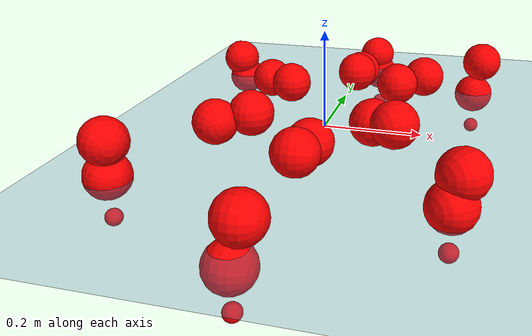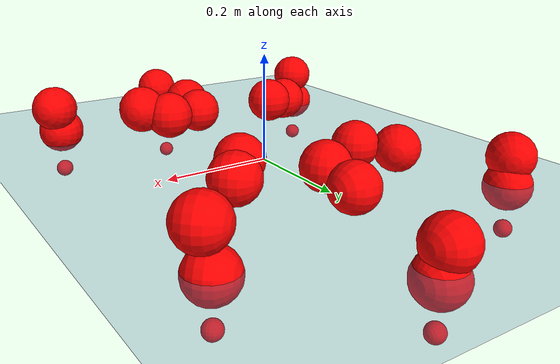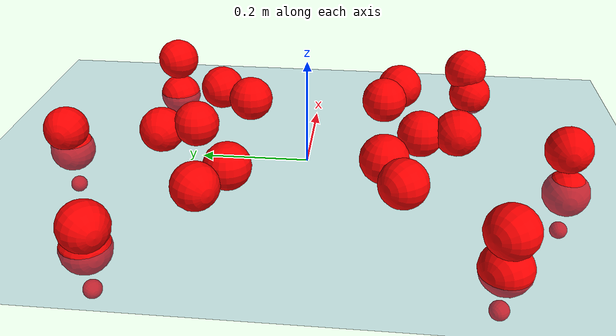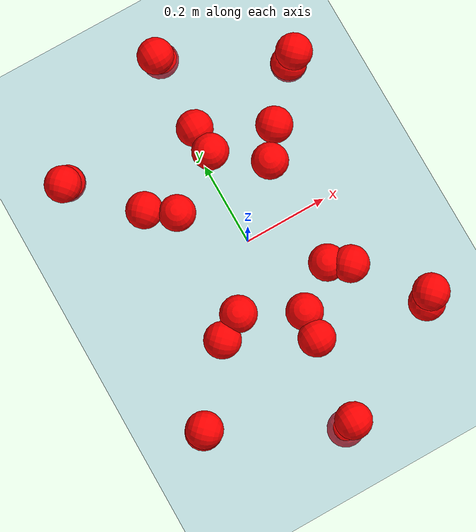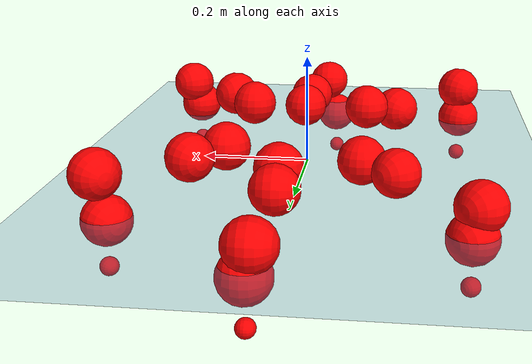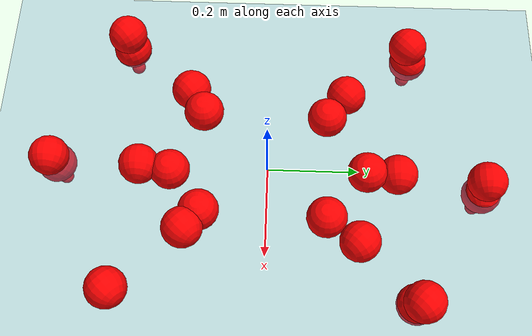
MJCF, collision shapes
<mujoco model="Golem">
  <compiler angle="radian" assetdir="assets" balanceinertia="true" inertiafromgeom="false"/>

  <option timestep="0.005" density="1.2" viscosity="2e-05"/>

  <size nkey="1"/>

  <visual>
    <quality shadowsize="8192"/>
    <map shadowclip="0.5"/>
  </visual>

  <default>
    <default class="/">
      <joint armature="0.01" damping="0.01" frictionloss="0.01"/>
      <geom contype="0" conaffinity="0" group="1" solref="-1000 -80"/>
      <site size="0.01 0.005 0.005" group="5"/>
      <general forcelimited="true" biastype="affine" gainprm="25" biasprm="0 -25 -0.5"/>
      <default class="visual">
        <geom type="mesh" group="2"/>
      </default>
      <default class="collision">
        <geom group="3"/>
      </default>
      <default class="foot">
        <geom size="0.01 0 0" condim="6" group="4" priority="1" solimp="0.015 1 0.01"/>
      </default>
      <default class="reward_collision_sphere">
        <geom group="5" rgba="1 0 0 1"/>
      </default>
    </default>
  </default>

  <asset>
    <texture type="skybox" colorspace="auto" name="//unnamed_texture_0" builtin="gradient" rgb1="0.95 0.95 0.95" rgb2="0.95 0.95 0.95" width="100" height="600"/>
    <texture type="2d" colorspace="auto" name="texplane" builtin="checker" rgb1="0.345 0.575 0.748" rgb2="0.345 0.575 0.748" markrgb="1 1 1" width="512" height="512"/>
    <material name="MatPlane" class="/" texture="texplane" texuniform="true" texrepeat="2 2" specular="0.9"/>
    <mesh name="body" class="/" file="body.stl" scale="0.001 0.001 0.001"/>
    <mesh name="coxa" class="/" file="coxa.stl" scale="0.001 0.001 0.001"/>
    <mesh name="femur" class="/" file="femur.stl" scale="0.001 0.001 0.001"/>
    <mesh name="tibia" class="/" file="tibia.stl" scale="0.001 0.001 0.001"/>
    <mesh name="tarsus" class="/" file="tarsus.stl" scale="0.001 0.001 0.001"/>
  </asset>

  <worldbody>
    <geom name="floor" class="/" size="100 100 0.125" type="plane" group="0" material="MatPlane"/>
    <light name="toplight_shadow" class="/" pos="0 0 5" dir="0.0990148 0.0990148 -0.990148" type="directional" ambient="0.04 0.04 0.04" diffuse="0.55 0.55 0.55" specular="0.12 0.12 0.12"/>
    <light name="toplight_fill" class="/" pos="0 0 5" dir="0.0990148 0.0990148 -0.990148" type="directional" castshadow="false" ambient="0.04 0.04 0.04" diffuse="0.3 0.3 0.3" specular="0.08 0.08 0.08"/>
    <body name="trunk" pos="0.0128814 -0.00105033 0.010946" quat="0.999995 0.000540223 -0.00103509 -0.00282521">
      <inertial pos="0.00614204 0.00796359 0.0163906" quat="0.996528 -0.00166174 -0.0383713 0.0738718" mass="5.58238" diaginertia="0.0031922 0.159303 0.00282623"/>
      <joint name="//unnamed_joint_0" type="free"/>
      <geom name="//unnamed_geom_1" class="/" pos="0 0 0.047996" quat="1 0 0 0" type="mesh" rgba="0.9 0.9 0.9 1" mesh="body"/>
      <site name="imu" class="/" pos="0.0475424 0.04328 0.127601" size="0.0108425"/>
      <camera name="track" class="/" pos="0 -3.47929 0" quat="0.707107 0.707107 0 0" mode="trackcom"/>
      <camera name="ego_camera" class="/" pos="0.0992102 0 0.0749937" quat="-0.5 -0.5 0.5 0.5"/>
      <body name="coxa_RR" pos="-0.133174 -0.15827 0.0607611" quat="0.381555 0.000747075 7.23628e-05 -0.924346">
        <inertial pos="0.00871583 -0.00193122 0.0100615" quat="0.998097 0.0606281 0.00176762 0.011079" mass="0.295489" diaginertia="0.00245098 0.194844 0.00275891"/>
        <joint name="coxa_joint_RR" class="/" pos="0 0 0" axis="0.050802 0.0267264 -0.998351" stiffness="0.0080471" range="-2.93925 2.80711" armature="0.0168602" damping="0.0320819" frictionloss="0.0170924"/>
        <geom name="//unnamed_geom_2" class="/" type="mesh" rgba="0.2 0.2 0.2 1" mesh="coxa"/>
        <geom name="//unnamed_geom_3" class="reward_collision_sphere" size="0.0433698" pos="-0.0228947 0 0"/>
        <body name="femur_RR" pos="0.0424095 -0.0184399 -0.0107293" quat="0.502113 -0.500532 0.498648 0.498699">
          <inertial pos="0.00934807 -0.0163765 -0.0179315" quat="0.99944 0.00491557 -0.00541079 0.0326475" mass="0.254283" diaginertia="0.00205821 0.135984 0.00180651"/>
          <joint name="femur_joint_RR" class="/" pos="0 0 0" axis="-0.00610173 0.039777 -0.99919" stiffness="0.0345261" range="-3.26662 3.1485" armature="0.00632131" damping="0" frictionloss="0.00100909"/>
          <geom name="//unnamed_geom_4" class="/" type="mesh" rgba="0.9 0.9 0.9 1" mesh="femur"/>
          <geom name="//unnamed_geom_5" class="reward_collision_sphere" size="0.0433698"/>
          <body name="tibia_RR" pos="-0.0100416 -0.204395 0.0174468" quat="0.00165233 0.999998 0.00129362 -0.000505617">
            <inertial pos="-0.0112426 0.01695 -0.00376471" quat="0.999704 -0.00104899 0.02357 0.00597027" mass="0.218677" diaginertia="0.00241013 0.150806 0.00234407"/>
            <joint name="tibia_joint_RR" class="/" pos="0 0 0" axis="-0.000479445 0.00238312 0.999997" range="-3.15083 3.1509" armature="0.00862667" damping="0" frictionloss="0.0174898"/>
            <geom name="//unnamed_geom_6" class="/" type="mesh" rgba="0.2 0.2 0.2 1" mesh="tibia"/>
            <geom name="//unnamed_geom_7" class="reward_collision_sphere" size="0.0433698"/>
            <body name="tarsus_RR" pos="0.0650934 0.00132935 0.00282715" quat="0.999997 0.00219146 -0.000983185 -0.000493285">
              <inertial pos="0.0577533 -0.00441618 0.00499245" quat="0.502485 0.544538 0.473712 0.476008" mass="0.200648" diaginertia="0.00195869 0.1656 0.00207514"/>
              <joint name="tarsus_joint_RR" class="/" pos="0 0 0" axis="-0.0413672 0.00559048 0.999128" range="-2.7828 2.77176" armature="0.00837566" damping="0" frictionloss="0.0091575"/>
              <geom name="//unnamed_geom_8" class="/" type="mesh" rgba="0.9 0.9 0.9 1" mesh="tarsus"/>
              <geom name="foot_1" class="foot" size="0.00577086" pos="0.0854734 0 0" quat="0 -0.707107 0 0.707107"/>
              <geom name="//unnamed_geom_10" class="reward_collision_sphere" size="0.0433698"/>
              <geom name="//unnamed_geom_11" class="reward_collision_sphere" size="0.0162637" pos="0.0820392 0 0"/>
              <site name="foot_1" class="foot" pos="0.0854734 0 0" quat="0 -0.707107 0 0.707107" size="0.0108425"/>
            </body>
          </body>
        </body>
      </body>
      <body name="coxa_RM" pos="0.0167421 -0.231149 0.0426756" quat="0.708115 0.00182979 0.00458259 -0.70608">
        <inertial pos="-0.00406968 0.0118413 -0.00038002" quat="0.996201 -0.0504469 0.0709744 0.00128902" mass="0.192858" diaginertia="0.0019082 0.153826 0.0020092"/>
        <joint name="coxa_joint_RM" class="/" pos="0 0 0" axis="0.0073515 0.0399007 -0.999177" range="-3.0046 3.01721" armature="0.00994001" damping="0.00209355" frictionloss="0.0137477"/>
        <geom name="//unnamed_geom_12" class="/" type="mesh" rgba="0.2 0.2 0.2 1" mesh="coxa"/>
        <geom name="//unnamed_geom_13" class="reward_collision_sphere" size="0.0433698" pos="-0.0228947 0 0"/>
        <body name="femur_RM" pos="0.0434472 -0.00664937 0.00924115" quat="0.500995 -0.50396 0.501776 0.493202">
          <inertial pos="0.0167893 0.0114912 0.0182085" quat="0.999679 -0.00482101 -0.00855511 0.023356" mass="0.20704" diaginertia="0.00276709 0.16016 0.0020692"/>
          <joint name="femur_joint_RM" class="/" pos="0 0 0" axis="0.0544004 0.0114877 -0.998453" range="-3.28949 2.80992" armature="0.00635487" damping="0.0216447" frictionloss="0.0194306"/>
          <geom name="//unnamed_geom_14" class="/" type="mesh" rgba="0.9 0.9 0.9 1" mesh="femur"/>
          <geom name="//unnamed_geom_15" class="reward_collision_sphere" size="0.0433698"/>
          <body name="tibia_RM" pos="0.0138304 -0.199697 -0.017809" quat="-0.00396584 0.999986 0.00341222 -0.00107861">
            <inertial pos="-0.00573963 -0.00792016 0.00487778" quat="1 -0.000408894 -2.62595e-05 -3.75784e-05" mass="0.212855" diaginertia="0.00191567 0.120253 0.00195425"/>
            <joint name="tibia_joint_RM" class="/" pos="0 0 0" axis="0.0694965 -0.0454258 0.996547" stiffness="0.000749755" range="-3.32482 3.44622" armature="0.0135745" damping="0.0635978" frictionloss="0.00533962"/>
            <geom name="//unnamed_geom_16" class="/" type="mesh" rgba="0.2 0.2 0.2 1" mesh="tibia"/>
            <geom name="//unnamed_geom_17" class="reward_collision_sphere" size="0.0433698"/>
            <body name="tarsus_RM" pos="0.0806376 0.00492209 0.0163341" quat="0.999996 0.00183018 -0.00138856 -0.00165205">
              <inertial pos="0.0532227 -0.001959 -0.0129376" quat="0.536585 0.473528 0.528848 0.456254" mass="0.225473" diaginertia="0.00195494 0.142173 0.00258118"/>
              <joint name="tarsus_joint_RM" class="/" pos="0 0 0" axis="-0.0107714 0.0422146 0.99905" stiffness="0.0128599" range="-2.82912 3.48211" armature="0.0112135" damping="0.000251933" frictionloss="0.0148806"/>
              <geom name="//unnamed_geom_18" class="/" type="mesh" rgba="0.9 0.9 0.9 1" mesh="tarsus"/>
              <geom name="foot_2" class="foot" size="0.00742658" pos="0.0854734 0 0" quat="0 -0.707107 0 0.707107"/>
              <geom name="//unnamed_geom_20" class="reward_collision_sphere" size="0.0433698"/>
              <geom name="//unnamed_geom_21" class="reward_collision_sphere" size="0.0162637" pos="0.0820392 0 0"/>
              <site name="foot_2" class="foot" pos="0.0854734 0 0" quat="0 -0.707107 0 0.707107" size="0.0108425"/>
            </body>
          </body>
        </body>
      </body>
      <body name="coxa_RF" pos="0.130101 -0.154568 0.0629662" quat="0.923287 0.00369808 -0.00425913 -0.384069">
        <inertial pos="-0.00903726 0.0189505 -0.00674624" quat="0.999187 0.0319967 -0.00196225 -0.0244295" mass="0.239064" diaginertia="0.00245032 0.125034 0.0018569"/>
        <joint name="coxa_joint_RF" class="/" pos="0 0 0" axis="0.0183277 0.0396926 -0.999044" stiffness="0.0337177" range="-3.15587 2.87629" armature="0.0136018" damping="0.0778345" frictionloss="0.0120295"/>
        <geom name="//unnamed_geom_22" class="/" type="mesh" rgba="0.2 0.2 0.2 1" mesh="coxa"/>
        <geom name="//unnamed_geom_23" class="reward_collision_sphere" size="0.0433698" pos="-0.0228947 0 0"/>
        <body name="femur_RF" pos="0.0284718 0.0103371 0.0108254" quat="0.500252 -0.498928 0.499773 0.501046">
          <inertial pos="-0.00570919 -0.000435699 -0.014344" quat="0.999238 -0.00558861 -0.00221051 -0.0385743" mass="0.256558" diaginertia="0.00251073 0.16771 0.00212981"/>
          <joint name="femur_joint_RF" class="/" pos="0 0 0" axis="0.00170107 -0.014614 -0.999892" range="-3.47007 2.999" armature="0.0106629" damping="0.00657988" frictionloss="0.0182363"/>
          <geom name="//unnamed_geom_24" class="/" type="mesh" rgba="0.9 0.9 0.9 1" mesh="femur"/>
          <geom name="//unnamed_geom_25" class="reward_collision_sphere" size="0.0433698"/>
          <body name="tibia_RF" pos="0.0126528 -0.190405 -0.00999127" quat="0.000522149 0.999999 -0.000853894 0.000120948">
            <inertial pos="-0.0129726 0.0107264 0.000676352" quat="0.996193 -0.0799321 -0.0135251 0.0320594" mass="0.230013" diaginertia="0.002639 0.180007 0.00228392"/>
            <joint name="tibia_joint_RF" class="/" pos="0 0 0" axis="0.0641875 0.0271042 0.99757" range="-3.13431 3.15831" armature="0.00706721" damping="0" frictionloss="0.0132514"/>
            <geom name="//unnamed_geom_26" class="/" type="mesh" rgba="0.2 0.2 0.2 1" mesh="tibia"/>
            <geom name="//unnamed_geom_27" class="reward_collision_sphere" size="0.0433698"/>
            <body name="tarsus_RF" pos="0.0491583 -0.000211058 0.0189031" quat="0.999984 0.00477362 -0.00292218 0.00110654">
              <inertial pos="0.0357855 0.0152504 -0.00830833" quat="0.500689 0.517803 0.515004 0.464717" mass="0.301814" diaginertia="0.00246985 0.183541 0.00199578"/>
              <joint name="tarsus_joint_RF" class="/" pos="0 0 0" axis="-0.00676388 0.0729336 0.997314" stiffness="0.01443" range="-2.86239 3.15199" armature="0.0107093" damping="0" frictionloss="0.0152284"/>
              <geom name="//unnamed_geom_28" class="/" type="mesh" rgba="0.9 0.9 0.9 1" mesh="tarsus"/>
              <geom name="foot_3" class="foot" size="0.00837155" pos="0.0854734 0 0" quat="0 -0.707107 0 0.707107"/>
              <geom name="//unnamed_geom_30" class="reward_collision_sphere" size="0.0433698"/>
              <geom name="//unnamed_geom_31" class="reward_collision_sphere" size="0.0162637" pos="0.0820392 0 0"/>
              <site name="foot_3" class="foot" pos="0.0854734 0 0" quat="0 -0.707107 0 0.707107" size="0.0108425"/>
            </body>
          </body>
        </body>
      </body>
      <body name="coxa_LR" pos="-0.140915 0.145904 0.034822" quat="0.378619 0.00270042 1.21398e-05 0.925549">
        <inertial pos="0.00643136 0.00682836 -0.0152079" quat="0.999718 -0.000611071 0.010126 -0.0214826" mass="0.249145" diaginertia="0.0022667 0.149486 0.00255922"/>
        <joint name="coxa_joint_LR" class="/" pos="0 0 0" axis="0.0191284 -0.0201266 -0.999614" stiffness="0.0695272" range="-2.93043 2.96758" armature="0.0164136" damping="0.0116329" frictionloss="0.0199905"/>
        <geom name="//unnamed_geom_32" class="/" type="mesh" rgba="0.2 0.2 0.2 1" mesh="coxa"/>
        <geom name="//unnamed_geom_33" class="reward_collision_sphere" size="0.0433698" pos="-0.0228947 0 0"/>
        <body name="femur_LR" pos="0.0514649 0.0124646 -0.00673914" quat="0.501701 -0.497963 0.501959 0.498363">
          <inertial pos="-0.0159032 0.00991413 -0.0135634" quat="0.999005 0.0170449 -0.00280504 0.0411076" mass="0.324387" diaginertia="0.00281349 0.161954 0.00260741"/>
          <joint name="femur_joint_LR" class="/" pos="0 0 0" axis="0.00402997 0.0092938 0.999949" range="-2.78127 3.46791" armature="0.0197041" damping="0" frictionloss="0.00935144"/>
          <geom name="//unnamed_geom_34" class="/" type="mesh" rgba="0.9 0.9 0.9 1" mesh="femur"/>
          <geom name="//unnamed_geom_35" class="reward_collision_sphere" size="0.0433698"/>
          <body name="tibia_LR" pos="0.000390059 -0.195882 -0.00742139" quat="-0.00511714 0.999985 -0.000241402 0.00191164">
            <inertial pos="-0.0111749 0.0138845 0.00103353" quat="0.999972 -0.00476616 -0.000661961 -0.00581036" mass="0.217825" diaginertia="0.00244848 0.134509 0.0028451"/>
            <joint name="tibia_joint_LR" class="/" pos="0 0 0" axis="-0.0349928 -0.0693941 -0.996975" stiffness="0.0549368" range="-3.25008 3.44039" armature="0.0154786" damping="0" frictionloss="0.00961922"/>
            <geom name="//unnamed_geom_36" class="/" type="mesh" rgba="0.2 0.2 0.2 1" mesh="tibia"/>
            <geom name="//unnamed_geom_37" class="reward_collision_sphere" size="0.0433698"/>
            <body name="tarsus_LR" pos="0.0499824 -0.00255793 0.0126525" quat="0.999966 0.00548362 0.00280359 0.00553076">
              <inertial pos="0.0608134 0.0144733 0.00819555" quat="0.500247 0.498613 0.500202 0.500935" mass="0.256937" diaginertia="0.00273482 0.202997 0.00215522"/>
              <joint name="tarsus_joint_LR" class="/" pos="0 0 0" axis="-0.00355415 -0.00113456 -0.999993" stiffness="0.0568723" range="-3.07355 3.06513" armature="0.00557279" damping="0" frictionloss="0.00227176"/>
              <geom name="//unnamed_geom_38" class="/" type="mesh" rgba="0.9 0.9 0.9 1" mesh="tarsus"/>
              <geom name="foot_4" class="foot" size="0.00899664" pos="0.0854734 0 0" quat="0.707107 0 -0.707107 0"/>
              <geom name="//unnamed_geom_40" class="reward_collision_sphere" size="0.0433698"/>
              <geom name="//unnamed_geom_41" class="reward_collision_sphere" size="0.0162637" pos="0.0820392 0 0"/>
              <site name="foot_4" class="foot" pos="0.0854734 0 0" quat="0.707107 0 -0.707107 0" size="0.0108425"/>
            </body>
          </body>
        </body>
      </body>
      <body name="coxa_LM" pos="0.00940198 0.239043 0.0445517" quat="0.706571 -8.25631e-05 9.58865e-05 0.707642">
        <inertial pos="-0.0155459 -0.000206981 -0.00877603" quat="0.999008 -0.00226959 -0.0375055 0.0239174" mass="0.300712" diaginertia="0.00237523 0.189148 0.00309663"/>
        <joint name="coxa_joint_LM" class="/" pos="0 0 0" axis="-0.00779698 -0.00902154 -0.999929" range="-3.24547 3.13387" armature="0.00863941" damping="0.0639292" frictionloss="0.0173429"/>
        <geom name="//unnamed_geom_42" class="/" type="mesh" rgba="0.2 0.2 0.2 1" mesh="coxa"/>
        <geom name="//unnamed_geom_43" class="reward_collision_sphere" size="0.0433698" pos="-0.0228947 0 0"/>
        <body name="femur_LM" pos="0.044709 0.00346284 -0.0145337" quat="0.499943 -0.500355 0.500253 0.499449">
          <inertial pos="-0.0122285 -0.00166583 0.0111482" quat="0.999112 0.0134522 -0.0382713 0.0113686" mass="0.237251" diaginertia="0.002672 0.140985 0.00160641"/>
          <joint name="femur_joint_LM" class="/" pos="0 0 0" axis="0.00440042 0.0856099 0.996319" range="-3.47359 3.34559" armature="0.0140025" damping="0.102323" frictionloss="0.010558"/>
          <geom name="//unnamed_geom_44" class="/" type="mesh" rgba="0.9 0.9 0.9 1" mesh="femur"/>
          <geom name="//unnamed_geom_45" class="reward_collision_sphere" size="0.0433698"/>
          <body name="tibia_LM" pos="0.0117625 -0.195781 -0.00452191" quat="0.00262304 0.999991 9.6667e-05 -0.0032017">
            <inertial pos="0.0167856 -0.000592304 -0.000681314" quat="0.999106 0.0340882 0.023896 0.00741466" mass="0.221901" diaginertia="0.00249568 0.144369 0.00192288"/>
            <joint name="tibia_joint_LM" class="/" pos="0 0 0" axis="0.00170484 -0.000219829 -0.999999" range="-3.29825 3.34475" armature="0.0179568" damping="0" frictionloss="0.021018"/>
            <geom name="//unnamed_geom_46" class="/" type="mesh" rgba="0.2 0.2 0.2 1" mesh="tibia"/>
            <geom name="//unnamed_geom_47" class="reward_collision_sphere" size="0.0433698"/>
            <body name="tarsus_LM" pos="0.0506853 -0.00280301 0.00883738" quat="0.999991 0.00163125 0.00380066 0.00112665">
              <inertial pos="0.0601969 0.0022478 0.0122735" quat="0.541576 0.456803 0.530249 0.465685" mass="0.227765" diaginertia="0.00268665 0.157813 0.00245049"/>
              <joint name="tarsus_joint_LM" class="/" pos="0 0 0" axis="-0.0262976 0.0178918 -0.999494" range="-3.4168 3.14102" armature="0.0063635" damping="0" frictionloss="0.00827305"/>
              <geom name="//unnamed_geom_48" class="/" type="mesh" rgba="0.9 0.9 0.9 1" mesh="tarsus"/>
              <geom name="foot_5" class="foot" size="0.00317744" pos="0.0854734 0 0" quat="0.707107 0 -0.707107 0"/>
              <geom name="//unnamed_geom_50" class="reward_collision_sphere" size="0.0433698"/>
              <geom name="//unnamed_geom_51" class="reward_collision_sphere" size="0.0162637" pos="0.0820392 0 0"/>
              <site name="foot_5" class="foot" pos="0.0854734 0 0" quat="0.707107 0 -0.707107 0" size="0.0108425"/>
            </body>
          </body>
        </body>
      </body>
      <body name="coxa_LF" pos="0.132871 0.145724 0.0515123" quat="0.923099 0.00108991 -0.00406639 0.38454">
        <inertial pos="0.000889244 0.0178251 0.00724713" quat="0.996883 0.0483635 -0.0546972 0.0298965" mass="0.176981" diaginertia="0.00208055 0.13343 0.00197638"/>
        <joint name="coxa_joint_LF" class="/" pos="0 0 0" axis="0.00584448 0.0581947 -0.998288" stiffness="0.0681122" range="-3.41133 3.15463" armature="0.00472252" damping="0" frictionloss="0.0188763"/>
        <geom name="//unnamed_geom_52" class="/" type="mesh" rgba="0.2 0.2 0.2 1" mesh="coxa"/>
        <geom name="//unnamed_geom_53" class="reward_collision_sphere" size="0.0433698" pos="-0.0228947 0 0"/>
        <body name="femur_LF" pos="0.0610481 0.0129052 -0.00158805" quat="0.499883 -0.501303 0.50159 0.497212">
          <inertial pos="-0.000825472 -0.0125218 0.0155723" quat="0.999335 -0.00276165 0.00537874 -0.0359579" mass="0.214712" diaginertia="0.00196454 0.138321 0.00237571"/>
          <joint name="femur_joint_LF" class="/" pos="0 0 0" axis="-0.0224708 0.0306366 0.999278" stiffness="0.0814185" range="-3.00197 3.14818" armature="0.00373079" damping="0" frictionloss="0.00968438"/>
          <geom name="//unnamed_geom_54" class="/" type="mesh" rgba="0.9 0.9 0.9 1" mesh="femur"/>
          <geom name="//unnamed_geom_55" class="reward_collision_sphere" size="0.0433698"/>
          <body name="tibia_LF" pos="-0.00579146 -0.175692 0.00227923" quat="0.000566046 0.999998 -0.00136038 -0.00110857">
            <inertial pos="-0.0166177 -0.0167078 -0.0183131" quat="0.999065 -0.0137356 -0.0382062 -0.0148734" mass="0.242848" diaginertia="0.00235396 0.129352 0.00176105"/>
            <joint name="tibia_joint_LF" class="/" pos="0 0 0" axis="-0.00800771 0.0481873 -0.998806" range="-3.39846 3.47203" armature="0.0145092" damping="0" frictionloss="0.0175518"/>
            <geom name="//unnamed_geom_56" class="/" type="mesh" rgba="0.2 0.2 0.2 1" mesh="tibia"/>
            <geom name="//unnamed_geom_57" class="reward_collision_sphere" size="0.0433698"/>
            <body name="tarsus_LF" pos="0.0788985 -0.0125001 -0.00866982" quat="1 -7.37695e-05 0.000979971 1.12197e-05">
              <inertial pos="0.0585742 0.00778927 -0.0166359" quat="0.482773 0.523491 0.44653 0.541756" mass="0.249406" diaginertia="0.00199127 0.149805 0.00175725"/>
              <joint name="tarsus_joint_LF" class="/" pos="0 0 0" axis="0.0110296 -0.0145018 -0.999834" range="-2.83893 3.47967" armature="0.00410154" damping="0" frictionloss="0.00462251"/>
              <geom name="//unnamed_geom_58" class="/" type="mesh" rgba="0.9 0.9 0.9 1" mesh="tarsus"/>
              <geom name="foot_6" class="foot" size="0.00571778" pos="0.0854734 0 0" quat="0.707107 0 -0.707107 0"/>
              <geom name="//unnamed_geom_60" class="reward_collision_sphere" size="0.0433698"/>
              <geom name="//unnamed_geom_61" class="reward_collision_sphere" size="0.0162637" pos="0.0820392 0 0"/>
              <site name="foot_6" class="foot" pos="0.0854734 0 0" quat="0.707107 0 -0.707107 0" size="0.0108425"/>
            </body>
          </body>
        </body>
      </body>
    </body>
  </worldbody>

  <contact>
    <pair class="/" geom1="floor" geom2="foot_1" name="//unnamed_contact_0"/>
    <pair class="/" geom1="floor" geom2="foot_2" name="//unnamed_contact_1"/>
    <pair class="/" geom1="floor" geom2="foot_3" name="//unnamed_contact_2"/>
    <pair class="/" geom1="floor" geom2="foot_4" name="//unnamed_contact_3"/>
    <pair class="/" geom1="floor" geom2="foot_5" name="//unnamed_contact_4"/>
    <pair class="/" geom1="floor" geom2="foot_6" name="//unnamed_contact_5"/>
  </contact>

  <actuator>
    <general name="coxa_joint_RR" class="/" joint="coxa_joint_RR" forcerange="-10.011 10.011" gainprm="14.8413" biasprm="0 -14.8413 -0.500765"/>
    <general name="femur_joint_RR" class="/" joint="femur_joint_RR" forcerange="-7.1827 7.1827" gainprm="14.8413" biasprm="0 -14.8413 -0.500765"/>
    <general name="tibia_joint_RR" class="/" joint="tibia_joint_RR" forcerange="-7.84332 7.84332" gainprm="14.8413" biasprm="0 -14.8413 -0.500765"/>
    <general name="tarsus_joint_RR" class="/" joint="tarsus_joint_RR" forcerange="-6.56068 6.56068" gainprm="14.8413" biasprm="0 -14.8413 -0.500765"/>
    <general name="coxa_joint_RM" class="/" joint="coxa_joint_RM" forcerange="-9.2308 9.2308" gainprm="14.8413" biasprm="0 -14.8413 -0.500765"/>
    <general name="femur_joint_RM" class="/" joint="femur_joint_RM" forcerange="-7.17438 7.17438" gainprm="14.8413" biasprm="0 -14.8413 -0.500765"/>
    <general name="tibia_joint_RM" class="/" joint="tibia_joint_RM" forcerange="-8.17416 8.17416" gainprm="14.8413" biasprm="0 -14.8413 -0.500765"/>
    <general name="tarsus_joint_RM" class="/" joint="tarsus_joint_RM" forcerange="-12.0217 12.0217" gainprm="14.8413" biasprm="0 -14.8413 -0.500765"/>
    <general name="coxa_joint_RF" class="/" joint="coxa_joint_RF" forcerange="-9.1924 9.1924" gainprm="14.8413" biasprm="0 -14.8413 -0.500765"/>
    <general name="femur_joint_RF" class="/" joint="femur_joint_RF" forcerange="-7.85167 7.85167" gainprm="14.8413" biasprm="0 -14.8413 -0.500765"/>
    <general name="tibia_joint_RF" class="/" joint="tibia_joint_RF" forcerange="-7.76845 7.76845" gainprm="14.8413" biasprm="0 -14.8413 -0.500765"/>
    <general name="tarsus_joint_RF" class="/" joint="tarsus_joint_RF" forcerange="-10.1154 10.1154" gainprm="14.8413" biasprm="0 -14.8413 -0.500765"/>
    <general name="coxa_joint_LR" class="/" joint="coxa_joint_LR" forcerange="-10.5307 10.5307" gainprm="14.8413" biasprm="0 -14.8413 -0.500765"/>
    <general name="femur_joint_LR" class="/" joint="femur_joint_LR" forcerange="-12.4233 12.4233" gainprm="14.8413" biasprm="0 -14.8413 -0.500765"/>
    <general name="tibia_joint_LR" class="/" joint="tibia_joint_LR" forcerange="-6.15486 6.15486" gainprm="14.8413" biasprm="0 -14.8413 -0.500765"/>
    <general name="tarsus_joint_LR" class="/" joint="tarsus_joint_LR" forcerange="-7.84423 7.84423" gainprm="14.8413" biasprm="0 -14.8413 -0.500765"/>
    <general name="coxa_joint_LM" class="/" joint="coxa_joint_LM" forcerange="-8.72939 8.72939" gainprm="14.8413" biasprm="0 -14.8413 -0.500765"/>
    <general name="femur_joint_LM" class="/" joint="femur_joint_LM" forcerange="-11.0402 11.0402" gainprm="14.8413" biasprm="0 -14.8413 -0.500765"/>
    <general name="tibia_joint_LM" class="/" joint="tibia_joint_LM" forcerange="-7.79727 7.79727" gainprm="14.8413" biasprm="0 -14.8413 -0.500765"/>
    <general name="tarsus_joint_LM" class="/" joint="tarsus_joint_LM" forcerange="-4.44469 4.44469" gainprm="14.8413" biasprm="0 -14.8413 -0.500765"/>
    <general name="coxa_joint_LF" class="/" joint="coxa_joint_LF" forcerange="-10.3716 10.3716" gainprm="14.8413" biasprm="0 -14.8413 -0.500765"/>
    <general name="femur_joint_LF" class="/" joint="femur_joint_LF" forcerange="-3.91941 3.91941" gainprm="14.8413" biasprm="0 -14.8413 -0.500765"/>
    <general name="tibia_joint_LF" class="/" joint="tibia_joint_LF" forcerange="-8.18384 8.18384" gainprm="14.8413" biasprm="0 -14.8413 -0.500765"/>
    <general name="tarsus_joint_LF" class="/" joint="tarsus_joint_LF" forcerange="-13.4426 13.4426" gainprm="14.8413" biasprm="0 -14.8413 -0.500765"/>
  </actuator>

  <sensor>
    <gyro site="imu" name="imu_angular_velocity"/>
    <velocimeter site="imu" name="imu_linear_velocity"/>
    <framelinvel objtype="site" objname="foot_1" name="foot_1_global_linear_velocity"/>
    <framelinvel objtype="site" objname="foot_2" name="foot_2_global_linear_velocity"/>
    <framelinvel objtype="site" objname="foot_3" name="foot_3_global_linear_velocity"/>
    <framelinvel objtype="site" objname="foot_4" name="foot_4_global_linear_velocity"/>
    <framelinvel objtype="site" objname="foot_5" name="foot_5_global_linear_velocity"/>
    <framelinvel objtype="site" objname="foot_6" name="foot_6_global_linear_velocity"/>
  </sensor>

  <keyframe>
    <key name="home" qpos="0 0 0.1457 1 0 0 0 0 0 0 0 0 0 0 0 0 0 0 0 0 0 0 0 0 0 0 0 0 0 0 0"/>
  </keyframe>
</mujoco>
